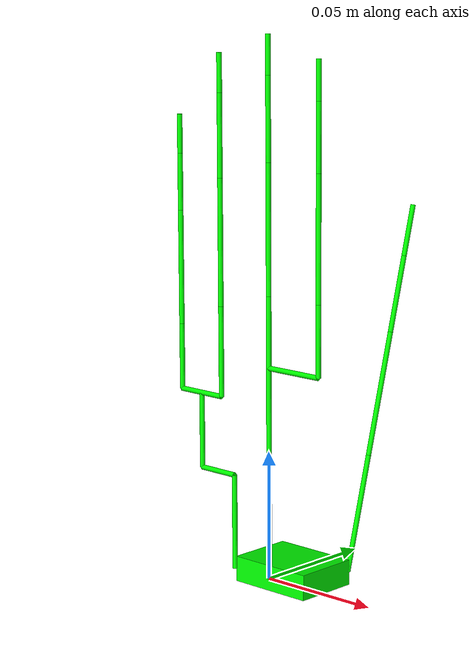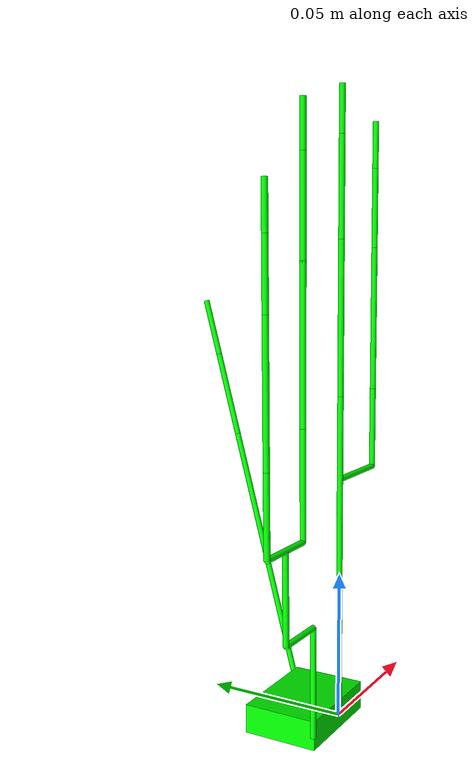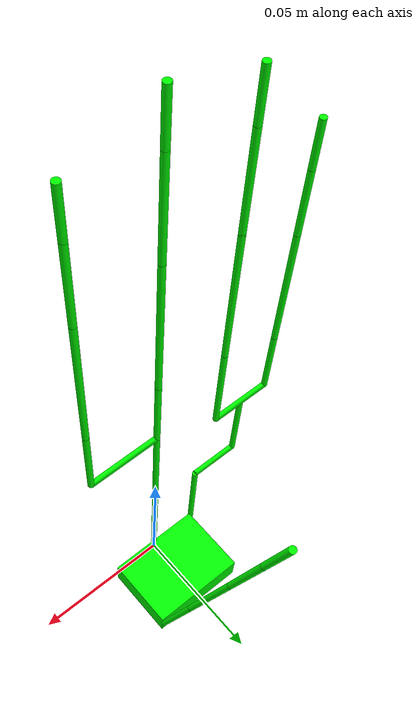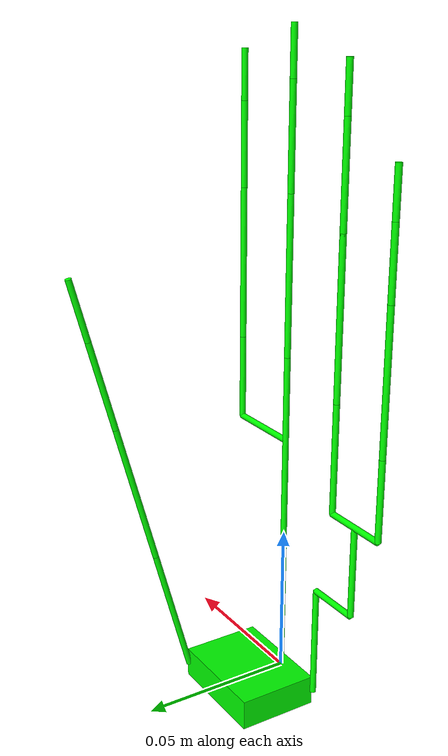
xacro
<?xml version="1.0"?>
<robot name="s5fs" xmlns:xacro="http://www.ros.org/wiki/xacro">
    <xacro:property name="cyl_radius" value="0.001" />
    <!-- RIGHT HAND = 1, LEFT HAND = -1 -->
    <xacro:property name="orientation" value="-1" />

    <!-- BASE_LINE LINKS -->
    <link name="base_link">
        <visual>
            <origin rpy="0 0 0" xyz="0 0.01313 0" />
            <geometry>
                <box size="0.0353 0.02626 0.010" />
            </geometry>
            <material name="green">
                <color rgba="0 1 0 1" />
            </material>
        </visual>
    </link>
    <link name="d">
        <visual>
            <origin rpy="0 0 0" xyz="0 0 0.055" />
            <geometry>
                <cylinder length="0.110" radius="${cyl_radius}" />
            </geometry>
            <material name="green" />
        </visual>
    </link>
    <link name="h">
        <visual>
            <origin rpy="0 1.571 0" xyz="${orientation*(-0.0125)} 0 0.0825" />
            <geometry>
                <cylinder length="0.025" radius="${cyl_radius}" />
            </geometry>
            <material name="green" />
        </visual>
    </link>
    <link name="d2">
        <visual>
            <origin rpy="0 0 0" xyz="${orientation*(-0.025)} 0 0.09625" />
            <geometry>
                <cylinder length="0.0275" radius="${cyl_radius}" />
            </geometry>
            <material name="green" />
        </visual>
    </link>
    <!-- LENGTH NOT FOUND IN DATASHEET! GUESSED!!! -->
    <link name="e1">
        <visual>
            <origin rpy="0 0 0" xyz="${orientation*(0.01840)} 0 0.01875" />
            <geometry>
                <cylinder length="0.0375" radius="${cyl_radius}" />
            </geometry>
            <material name="green" />
        </visual>
    </link>
    <!-- LENGTH NOT FOUND IN DATASHEET! GUESSED!!! -->
    <link name="e2">
        <visual>
            <origin rpy="0 1.571 0" xyz="${orientation*(0.00875)} 0 0" />
            <geometry>
                <cylinder length="0.0175" radius="${cyl_radius}" />
            </geometry>
            <material name="green" />
        </visual>
    </link>
    <!-- LENGTH NOT FOUND IN DATASHEET! GUESSED!!! -->
    <link name="e3">
        <visual>
            <origin rpy="0 0 0" xyz="${orientation*(0.0175)} 0 0.015" />
            <geometry>
                <cylinder length="0.03" radius="${cyl_radius}" />
            </geometry>
            <material name="green" />
        </visual>
    </link>
    <link name="e">
        <visual>
            <origin rpy="0 1.571 0" xyz="${orientation*(0.0175)} 0 0.03" />
            <geometry>
                <cylinder length="0.0215" radius="${cyl_radius}" />
            </geometry>
            <material name="green" />
        </visual>
    </link>
    <!-- LENGTH NOT FOUND IN DATASHEET! GUESSED, BUT POSITION CALCULATED: E4 = D-G-F!!! -->
    <link name="e4">
        <visual>
            <origin rpy="0 0 0" xyz="${orientation*(0.02825)} 0 0.043" />
            <geometry>
                <cylinder length="0.026" radius="${cyl_radius}" />
            </geometry>
            <material name="green" />
        </visual>
    </link>
    <!-- LENGTH NOT FOUND IN DATASHEET! GUESSED, BUT POSITION CALCULATED: E5 = D-G!!! -->
    <link name="e5">
        <visual>
            <origin rpy="0 0 0" xyz="${orientation*(0.00675)} 0 0.04775" />
            <geometry>
                <cylinder length="0.0355" radius="${cyl_radius}" />
            </geometry>
            <material name="green" />
        </visual>
    </link>

    <!-- THUMB LINKS -->
    <link name="z">
        <visual>
            <origin rpy="0 0 0" xyz="0 0 0.02298" />
            <geometry>
                <cylinder length="0.04596" radius="${cyl_radius}" />
            </geometry>
            <material name="green" />
        </visual>
    </link>
    <link name="a">
        <visual>
            <origin rpy="0 0 0" xyz="0 0 0.02425" />
            <geometry>
                <cylinder length="0.0485" radius="${cyl_radius}" />
            </geometry>
            <material name="green" />
        </visual>
    </link>
    <link name="b">
        <visual>
            <origin rpy="0 0 0" xyz="0 0 0.015" />
            <geometry>
                <cylinder length="0.030" radius="${cyl_radius}" />
            </geometry>
            <material name="green" />
        </visual>
    </link>
    <link name="c">
        <visual>
            <origin rpy="0 0 0" xyz="0 0 0.010" />
            <geometry>
                <cylinder length="0.020" radius="${cyl_radius}" />
            </geometry>
            <material name="green" />
        </visual>
    </link>

    <!-- FOREFINGER LINKS -->
    <link name="virtual_l">
        <visual>
            <origin rpy="0 0 0" xyz="0 0 0" />
            <geometry>
                <cylinder length="0" radius="0" />
            </geometry>
        </visual>
    </link>
    <link name="l">
        <visual>
            <origin rpy="0 0 0" xyz="0 0 0.02402" />
            <geometry>
                <cylinder length="0.04804" radius="${cyl_radius}" />
            </geometry>
            <material name="green" />
        </visual>
    </link>
    <link name="p">
        <visual>
            <origin rpy="0 0 0" xyz="0 0 0.013" />
            <geometry>
                <cylinder length="0.026" radius="${cyl_radius}" />
            </geometry>
            <material name="green" />
        </visual>
    </link>
    <link name="t">
        <visual>
            <origin rpy="0 0 0" xyz="0 0 0.0075" />
            <geometry>
                <cylinder length="0.015" radius="${cyl_radius}" />
            </geometry>
            <material name="green" />
        </visual>
    </link>

    <!-- MIDDLE FINGER LINKS -->
    <link name="k">
        <visual>
            <origin rpy="0 0 0" xyz="0 0 0.02502" />
            <geometry>
                <cylinder length="0.05004" radius="${cyl_radius}" />
            </geometry>
            <material name="green" />
        </visual>
    </link>
    <link name="o">
        <visual>
            <origin rpy="0 0 0" xyz="0 0 0.016" />
            <geometry>
                <cylinder length="0.032" radius="${cyl_radius}" />
            </geometry>
            <material name="green" />
        </visual>
    </link>
    <link name="s">
        <visual>
            <origin rpy="0 0 0" xyz="0 0 0.0075" />
            <geometry>
                <cylinder length="0.015" radius="${cyl_radius}" />
            </geometry>
            <material name="green" />
        </visual>
    </link>

    <!-- RING FINGER LINKS -->
    <link name="virtual_j">
        <visual>
            <origin rpy="0 0 0" xyz="0.006625 0 0" />
            <geometry>
                <cylinder length="0" radius="0" />
            </geometry>
        </visual>
    </link>
    <link name="j">
        <visual>
            <origin rpy="0 0 0" xyz="0 0 0.02502" />
            <geometry>
                <cylinder length="0.05004" radius="${cyl_radius}" />
            </geometry>
            <material name="green" />
        </visual>
    </link>
    <link name="n">
        <visual>
            <origin rpy="0 0 0" xyz="0 0 0.01525" />
            <geometry>
                <cylinder length="0.032" radius="${cyl_radius}" />
            </geometry>
            <material name="green" />
        </visual>
    </link>
    <link name="r">
        <visual>
            <origin rpy="0 0 0" xyz="0 0 0.00675" />
            <geometry>
                <cylinder length="0.015" radius="${cyl_radius}" />
            </geometry>
            <material name="green" />
        </visual>
    </link>

    <!-- LITTLE FINGER LINKS -->
    <link name="virtual_i">
        <visual>
            <origin rpy="0 0 0" xyz="0.02825 0 0" />
            <geometry>
                <cylinder length="0" radius="0" />
            </geometry>
        </visual>
    </link>
    <link name="i">
        <visual>
            <origin rpy="0 0 0" xyz="0 0 0.02227" />
            <geometry>
                <cylinder length="0.04454" radius="${cyl_radius}" />
            </geometry>
            <material name="green" />
        </visual>
    </link>
    <link name="m">
        <visual>
            <origin rpy="0 0 0" xyz="0 0 0.011" />
            <geometry>
                <cylinder length="0.022" radius="${cyl_radius}" />
            </geometry>
            <material name="green" />
        </visual>
    </link>
    <link name="q">
        <visual>
            <origin rpy="0 0 0" xyz="0 0 0.0075" />
            <geometry>
                <cylinder length="0.015" radius="${cyl_radius}" />
            </geometry>
            <material name="green" />
        </visual>
    </link>

   <joint name="Thumb_Flexion" type="revolute">
        <parent link="z" />
        <child link="a" />
        <limit effort="1000.0" lower="0.0" upper="0.9704" velocity="1" />
        <origin xyz="0 0 0.04596" rpy="0 0 0" />
        <axis xyz="${orientation*(1)} 0 0" />
    </joint>

    <!-- BASE_LINE JOINTS -->
    <joint name="Thumb_Opposition" type="revolute">
        <parent link="base_link" />
        <child link="z" />
        <limit effort="1000.0" lower="0.0" upper="0.9879" velocity="1" />
        <origin xyz="${orientation*(-0.01690)} 0.02626 0" rpy="0 0.2618 1.571" />
        <axis xyz="0 0 ${orientation*(-1)}" />
    </joint>

    <!-- JOINT NOT FOR BASE_LINE. BUT WRITTEN DOWN HERE FOR BETTER UX -->

    <joint name="f1" type="fixed">
        <parent link="base_link" />
        <child link="d" />
        <origin xyz="0 0 0" rpy="0 0 0" />
    </joint>
    <joint name="f2" type="fixed">
        <parent link="d" />
        <child link="h" />
        <origin xyz="0 0 0" rpy="0 0 0" />
    </joint>
    <joint name="f3" type="fixed">
        <parent link="h" />
        <child link="d2" />
        <origin xyz="0 0 0" rpy="0 0 0" />
    </joint>
    <joint name="f4" type="fixed">
        <parent link="base_link" />
        <child link="e1" />
        <origin xyz="0 0 0" rpy="0 0 0" />
    </joint>
    <joint name="j5" type="revolute">
        <parent link="e1" />
        <child link="e2" />
        <limit effort="1000.0" lower="0.0" upper="0.98786" velocity="1" />
        <origin xyz="${orientation*(0.01840)} 0 0.0375" rpy="0 0 0" />
        <axis xyz="0 0 ${orientation*(1)}" />
        <mimic joint="Thumb_Opposition" multiplier="1" offset="0" />
    </joint>
    <joint name="f5" type="fixed">
        <parent link="e2" />
        <child link="e3" />
        <origin xyz="0 0 0" rpy="0 0 0" />
    </joint>
    <joint name="f6" type="fixed">
        <parent link="e3" />
        <child link="e" />
        <origin xyz="0 0 0" rpy="0 0 0" />
    </joint>
    <joint name="f7" type="fixed">
        <parent link="e" />
        <child link="e4" />
        <origin xyz="0 0 0" rpy="0 0 0" />
    </joint>
    <joint name="f8" type="fixed">
        <parent link="e" />
        <child link="e5" />
        <origin xyz="0 0 0" rpy="0 0 0" />
    </joint>

    <!-- THUMB JOINTS -->
    <joint name="j3" type="revolute">
        <parent link="a" />
        <child link="b" />
        <limit effort="1000.0" lower="0.0" upper="0.98506" velocity="1" />
        <origin xyz="0 0 0.0485" rpy="0 0 0" />
        <axis xyz="${orientation*(1)} 0 0" />
        <mimic joint="Thumb_Flexion" multiplier="1.01511" offset="0" />
    </joint>
    <joint name="j4" type="revolute">
        <parent link="b" />
        <child link="c" />
        <limit effort="1000.0" lower="0.0" upper="1.406" velocity="1" />
        <origin xyz="0 0 0.030" rpy="0 0 0" />
        <axis xyz="${orientation*(1)} 0 0" />
        <mimic joint="Thumb_Flexion" multiplier="1.44889" offset="0" />
    </joint>

    <!-- FOREFINGER JOINTS -->
    <joint name="Index_Finger_Distal" type="revolute">
        <parent link="l" />
        <child link="p" />
        <limit effort="1000.0" lower="0" upper="1.334" velocity="1" />
        <origin xyz="0 0 0.04804" rpy="0 0 0" />
        <axis xyz="-1 0 0" />
    </joint>
    <joint name="Index_Finger_Proximal" type="revolute">
        <parent link="d2" />
        <child link="virtual_l" />
        <limit effort="1000.0" lower="0.0" upper="0.79849" velocity="1" />
        <origin xyz="${orientation*(-0.025)} 0 0.110" rpy="0 0 0" />
        <axis xyz="-1 0 0" />
    </joint>
    <!-- JOINT Finger_Spread in BASE_LINE section for better UX -->
     <joint name="j14" type="revolute">
        <parent link="p" />
        <child link="t" />
        <limit effort="1000.0" lower="0" upper="1.394" velocity="1" />
        <origin xyz="0 0 0.026" rpy="0 0 0" />
        <axis xyz="-1 0 0" />
        <mimic joint="Index_Finger_Distal" multiplier="1.0450" offset="0" />
    </joint>

    <!-- MIDDLE FINGER JOINTS -->
    <joint name="Middle_Finger_Distal" type="revolute">
        <parent link="k" />
        <child link="o" />
        <limit effort="1000.0" lower="0" upper="1.334" velocity="1" />
        <origin xyz="0 0 0.05004" rpy="0 0 0" />
        <axis xyz="-1 0 0" />
    </joint>
    <joint name="Middle_Finger_Proximal" type="revolute">
        <parent link="d" />
        <child link="k" />
        <limit effort="1000.0" lower="0.0" upper="0.79849" velocity="1" />
        <origin xyz="0 0 0.110" rpy="0 0 0" />
        <axis xyz="-1 0 0" />
    </joint>
     <joint name="j15" type="revolute">
        <parent link="o" />
        <child link="s" />
        <limit effort="1000.0" lower="0" upper="1.334" velocity="1" />
        <origin xyz="0 0 0.032" rpy="0 0 0" />
        <axis xyz="-1 0 0" />
        <mimic joint="Middle_Finger_Distal" multiplier="1.000" offset="0" />
    </joint>

    <!-- RING FINGER JOINTS -->
    <joint name="Ring_Finger" type="revolute">
        <parent link="e5" />
        <child link="virtual_j" />
        <limit effort="1000.0" lower="0.0" upper="0.98175" velocity="1" />
        <origin xyz="0 0 0.0655" rpy="0 0 0" />
        <axis xyz="-1 0 0" />
    </joint>
    <joint name="j12" type="revolute">
        <parent link="j" />
        <child link="n" />
        <limit effort="1000.0" lower="0" upper="1.334" velocity="1" />
        <origin xyz="0 0 0.05004" rpy="0 0 0" />
        <axis xyz="-1 0 0" />
        <mimic joint="Ring_Finger" multiplier="1.3588" offset="0" />
    </joint>
    <joint name="j16" type="revolute">
        <parent link="n" />
        <child link="r" />
        <limit effort="1000.0" lower="0" upper="1.395" velocity="1" />
        <origin xyz="0 0 0.032" rpy="0 0 0" />
        <axis xyz="-1 0 0" />
        <mimic joint="Ring_Finger" multiplier="1.42093" offset="0" />
    </joint>

    <!-- LITTLE FINGER JOINTS -->
    <joint name="Pinky" type="revolute">
        <parent link="e4" />
        <child link="virtual_i" />
        <limit effort="1000.0" lower="0.0" upper="0.98175" velocity="1" />
        <origin xyz="0 0 0.056" rpy="0 0 0" />
        <axis xyz="-1 0 0" />
    </joint>
    <joint name="j13" type="revolute">
        <parent link="i" />
        <child link="m" />
        <limit effort="1000.0" lower="0" upper="1.334" velocity="1" />
        <origin xyz="0 0 0.04454" rpy="0 0 0" />
        <axis xyz="-1 0 0" />
        <mimic joint="Pinky" multiplier="1.35880" offset="0" />
    </joint>
    <joint name="j17" type="revolute">
        <parent link="m" />
        <child link="q" />
        <limit effort="1000.0" lower="0" upper="1.3971" velocity="1" />
        <origin xyz="0 0 0.022" rpy="0 0 0" />
        <axis xyz="-1 0 0" />
        <mimic joint="Pinky" multiplier="1.42307" offset="0" />
    </joint>
        <joint name="j6b" type="revolute">
        <parent link="virtual_l" />
        <child link="l" />
        <limit effort="1000.0" lower="0.0" upper="0.28833" velocity="1" />
        <origin xyz="0 0 0" rpy="0 0 0" />
        <axis xyz="0 ${orientation*(-1)} 0" />
        <mimic joint="Finger_Spread" multiplier="0.5" offset="0" />
    </joint>
    <joint name="j8b" type="revolute">
        <parent link="virtual_j" />
        <child link="j" />
        <limit effort="1000.0" lower="0.0" upper="0.28833" velocity="1" />
        <origin xyz="${orientation*(0.00675)} 0 0" rpy="0 0 0" />
        <axis xyz="0 ${orientation*(1)} 0" />
        <mimic joint="Finger_Spread" multiplier="0.5" offset="0" />
    </joint>
    <joint name="Finger_Spread" type="revolute">
        <parent link="virtual_i" />
        <child link="i" />
        <limit effort="1000.0" lower="0.0" upper="0.5829" velocity="1" />
        <origin xyz="${orientation*(0.02825)} 0 0" rpy="0 0 0" />
        <axis xyz="0 ${orientation*(1)} 0" />
     </joint>

</robot>
